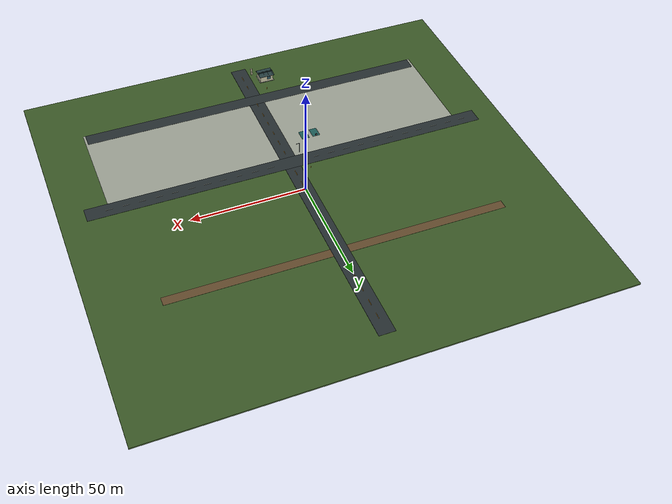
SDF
<sdf version="1.9">
 <world name="fleetscope_estate">
  <model name="estate_ground">
   <static>true</static>
   <link name="structure">
    <visual name="visual_0">
     <pose>0 0 -0.3 0 0 0</pose>
     <geometry><box><size>200 190 0.6</size></box></geometry>
     <material>
      <ambient>0.24 0.36 0.16 1</ambient>
      <diffuse>0.24 0.36 0.16 1</diffuse>
      <specular>.08 .08 .08 1</specular>
     </material>
    </visual>
    <collision name="collision_0">
     <pose>0 0 -0.3 0 0 0</pose>
     <geometry><box><size>200 190 0.6</size></box></geometry>
    </collision>
   </link>
  </model>
  <model name="campus_apron">
   <static>true</static>
   <link name="structure">
    <visual name="visual_0">
     <pose>0 -43 0.015 0 0 0</pose>
     <geometry><box><size>158 48 0.03</size></box></geometry>
     <material>
      <ambient>0.63 0.65 0.6 1</ambient>
      <diffuse>0.63 0.65 0.6 1</diffuse>
      <specular>.08 .08 .08 1</specular>
     </material>
     <cast_shadows>false</cast_shadows>
    </visual>
    <collision name="collision_0">
     <pose>0 -43 0.015 0 0 0</pose>
     <geometry><box><size>158 48 0.03</size></box></geometry>
    </collision>
   </link>
  </model>
  <model name="service_roads">
   <static>true</static>
   <link name="structure">
    <visual name="visual_0">
     <pose>0 -3 0.035 0 0 0</pose>
     <geometry><box><size>7 170 0.05</size></box></geometry>
     <material>
      <ambient>0.16 0.19 0.2 1</ambient>
      <diffuse>0.16 0.19 0.2 1</diffuse>
      <specular>.08 .08 .08 1</specular>
     </material>
     <cast_shadows>false</cast_shadows>
    </visual>
    <collision name="collision_0">
     <pose>0 -3 0.035 0 0 0</pose>
     <geometry><box><size>7 170 0.05</size></box></geometry>
    </collision>
    <visual name="visual_1">
     <pose>0 -18 0.036 0 0 0</pose>
     <geometry><box><size>178 7 0.05</size></box></geometry>
     <material>
      <ambient>0.16 0.19 0.2 1</ambient>
      <diffuse>0.16 0.19 0.2 1</diffuse>
      <specular>.08 .08 .08 1</specular>
     </material>
     <cast_shadows>false</cast_shadows>
    </visual>
    <collision name="collision_1">
     <pose>0 -18 0.036 0 0 0</pose>
     <geometry><box><size>178 7 0.05</size></box></geometry>
    </collision>
    <visual name="visual_2">
     <pose>0 -64 0.036 0 0 0</pose>
     <geometry><box><size>156 6 0.05</size></box></geometry>
     <material>
      <ambient>0.16 0.19 0.2 1</ambient>
      <diffuse>0.16 0.19 0.2 1</diffuse>
      <specular>.08 .08 .08 1</specular>
     </material>
     <cast_shadows>false</cast_shadows>
    </visual>
    <collision name="collision_2">
     <pose>0 -64 0.036 0 0 0</pose>
     <geometry><box><size>156 6 0.05</size></box></geometry>
    </collision>
    <visual name="visual_3">
     <pose>0 37.5 0.025 0 0 0</pose>
     <geometry><box><size>145 4 0.03</size></box></geometry>
     <material>
      <ambient>0.4 0.3 0.18 1</ambient>
      <diffuse>0.4 0.3 0.18 1</diffuse>
      <specular>.08 .08 .08 1</specular>
     </material>
     <cast_shadows>false</cast_shadows>
    </visual>
    <collision name="collision_3">
     <pose>0 37.5 0.025 0 0 0</pose>
     <geometry><box><size>145 4 0.03</size></box></geometry>
    </collision>
    <visual name="visual_4">
     <pose>0 -81 0.065 0 0 0</pose>
     <geometry><box><size>0.15 3 0.009</size></box></geometry>
     <material>
      <ambient>0.95 0.64 0.13 1</ambient>
      <diffuse>0.95 0.64 0.13 1</diffuse>
      <specular>.08 .08 .08 1</specular>
     </material>
     <cast_shadows>false</cast_shadows>
    </visual>
    <visual name="visual_5">
     <pose>0 -74 0.065 0 0 0</pose>
     <geometry><box><size>0.15 3 0.009</size></box></geometry>
     <material>
      <ambient>0.95 0.64 0.13 1</ambient>
      <diffuse>0.95 0.64 0.13 1</diffuse>
      <specular>.08 .08 .08 1</specular>
     </material>
     <cast_shadows>false</cast_shadows>
    </visual>
    <visual name="visual_6">
     <pose>0 -60 0.065 0 0 0</pose>
     <geometry><box><size>0.15 3 0.009</size></box></geometry>
     <material>
      <ambient>0.95 0.64 0.13 1</ambient>
      <diffuse>0.95 0.64 0.13 1</diffuse>
      <specular>.08 .08 .08 1</specular>
     </material>
     <cast_shadows>false</cast_shadows>
    </visual>
    <visual name="visual_7">
     <pose>0 -53 0.065 0 0 0</pose>
     <geometry><box><size>0.15 3 0.009</size></box></geometry>
     <material>
      <ambient>0.95 0.64 0.13 1</ambient>
      <diffuse>0.95 0.64 0.13 1</diffuse>
      <specular>.08 .08 .08 1</specular>
     </material>
     <cast_shadows>false</cast_shadows>
    </visual>
    <visual name="visual_8">
     <pose>0 -46 0.065 0 0 0</pose>
     <geometry><box><size>0.15 3 0.009</size></box></geometry>
     <material>
      <ambient>0.95 0.64 0.13 1</ambient>
      <diffuse>0.95 0.64 0.13 1</diffuse>
      <specular>.08 .08 .08 1</specular>
     </material>
     <cast_shadows>false</cast_shadows>
    </visual>
    <visual name="visual_9">
     <pose>0 -39 0.065 0 0 0</pose>
     <geometry><box><size>0.15 3 0.009</size></box></geometry>
     <material>
      <ambient>0.95 0.64 0.13 1</ambient>
      <diffuse>0.95 0.64 0.13 1</diffuse>
      <specular>.08 .08 .08 1</specular>
     </material>
     <cast_shadows>false</cast_shadows>
    </visual>
    <visual name="visual_10">
     <pose>0 -32 0.065 0 0 0</pose>
     <geometry><box><size>0.15 3 0.009</size></box></geometry>
     <material>
      <ambient>0.95 0.64 0.13 1</ambient>
      <diffuse>0.95 0.64 0.13 1</diffuse>
      <specular>.08 .08 .08 1</specular>
     </material>
     <cast_shadows>false</cast_shadows>
    </visual>
    <visual name="visual_11">
     <pose>0 -25 0.065 0 0 0</pose>
     <geometry><box><size>0.15 3 0.009</size></box></geometry>
     <material>
      <ambient>0.95 0.64 0.13 1</ambient>
      <diffuse>0.95 0.64 0.13 1</diffuse>
      <specular>.08 .08 .08 1</specular>
     </material>
     <cast_shadows>false</cast_shadows>
    </visual>
    <visual name="visual_12">
     <pose>0 -11 0.065 0 0 0</pose>
     <geometry><box><size>0.15 3 0.009</size></box></geometry>
     <material>
      <ambient>0.95 0.64 0.13 1</ambient>
      <diffuse>0.95 0.64 0.13 1</diffuse>
      <specular>.08 .08 .08 1</specular>
     </material>
     <cast_shadows>false</cast_shadows>
    </visual>
    <visual name="visual_13">
     <pose>0 -4 0.065 0 0 0</pose>
     <geometry><box><size>0.15 3 0.009</size></box></geometry>
     <material>
      <ambient>0.95 0.64 0.13 1</ambient>
      <diffuse>0.95 0.64 0.13 1</diffuse>
      <specular>.08 .08 .08 1</specular>
     </material>
     <cast_shadows>false</cast_shadows>
    </visual>
    <visual name="visual_14">
     <pose>0 3 0.065 0 0 0</pose>
     <geometry><box><size>0.15 3 0.009</size></box></geometry>
     <material>
      <ambient>0.95 0.64 0.13 1</ambient>
      <diffuse>0.95 0.64 0.13 1</diffuse>
      <specular>.08 .08 .08 1</specular>
     </material>
     <cast_shadows>false</cast_shadows>
    </visual>
    <visual name="visual_15">
     <pose>0 10 0.065 0 0 0</pose>
     <geometry><box><size>0.15 3 0.009</size></box></geometry>
     <material>
      <ambient>0.95 0.64 0.13 1</ambient>
      <diffuse>0.95 0.64 0.13 1</diffuse>
      <specular>.08 .08 .08 1</specular>
     </material>
     <cast_shadows>false</cast_shadows>
    </visual>
    <visual name="visual_16">
     <pose>0 17 0.065 0 0 0</pose>
     <geometry><box><size>0.15 3 0.009</size></box></geometry>
     <material>
      <ambient>0.95 0.64 0.13 1</ambient>
      <diffuse>0.95 0.64 0.13 1</diffuse>
      <specular>.08 .08 .08 1</specular>
     </material>
     <cast_shadows>false</cast_shadows>
    </visual>
    <visual name="visual_17">
     <pose>0 24 0.065 0 0 0</pose>
     <geometry><box><size>0.15 3 0.009</size></box></geometry>
     <material>
      <ambient>0.95 0.64 0.13 1</ambient>
      <diffuse>0.95 0.64 0.13 1</diffuse>
      <specular>.08 .08 .08 1</specular>
     </material>
     <cast_shadows>false</cast_shadows>
    </visual>
    <visual name="visual_18">
     <pose>0 31 0.065 0 0 0</pose>
     <geometry><box><size>0.15 3 0.009</size></box></geometry>
     <material>
      <ambient>0.95 0.64 0.13 1</ambient>
      <diffuse>0.95 0.64 0.13 1</diffuse>
      <specular>.08 .08 .08 1</specular>
     </material>
     <cast_shadows>false</cast_shadows>
    </visual>
    <visual name="visual_19">
     <pose>0 38 0.065 0 0 0</pose>
     <geometry><box><size>0.15 3 0.009</size></box></geometry>
     <material>
      <ambient>0.95 0.64 0.13 1</ambient>
      <diffuse>0.95 0.64 0.13 1</diffuse>
      <specular>.08 .08 .08 1</specular>
     </material>
     <cast_shadows>false</cast_shadows>
    </visual>
    <visual name="visual_20">
     <pose>0 45 0.065 0 0 0</pose>
     <geometry><box><size>0.15 3 0.009</size></box></geometry>
     <material>
      <ambient>0.95 0.64 0.13 1</ambient>
      <diffuse>0.95 0.64 0.13 1</diffuse>
      <specular>.08 .08 .08 1</specular>
     </material>
     <cast_shadows>false</cast_shadows>
    </visual>
    <visual name="visual_21">
     <pose>0 52 0.065 0 0 0</pose>
     <geometry><box><size>0.15 3 0.009</size></box></geometry>
     <material>
      <ambient>0.95 0.64 0.13 1</ambient>
      <diffuse>0.95 0.64 0.13 1</diffuse>
      <specular>.08 .08 .08 1</specular>
     </material>
     <cast_shadows>false</cast_shadows>
    </visual>
    <visual name="visual_22">
     <pose>0 59 0.065 0 0 0</pose>
     <geometry><box><size>0.15 3 0.009</size></box></geometry>
     <material>
      <ambient>0.95 0.64 0.13 1</ambient>
      <diffuse>0.95 0.64 0.13 1</diffuse>
      <specular>.08 .08 .08 1</specular>
     </material>
     <cast_shadows>false</cast_shadows>
    </visual>
    <visual name="visual_23">
     <pose>0 66 0.065 0 0 0</pose>
     <geometry><box><size>0.15 3 0.009</size></box></geometry>
     <material>
      <ambient>0.95 0.64 0.13 1</ambient>
      <diffuse>0.95 0.64 0.13 1</diffuse>
      <specular>.08 .08 .08 1</specular>
     </material>
     <cast_shadows>false</cast_shadows>
    </visual>
    <visual name="visual_24">
     <pose>0 73 0.065 0 0 0</pose>
     <geometry><box><size>0.15 3 0.009</size></box></geometry>
     <material>
      <ambient>0.95 0.64 0.13 1</ambient>
      <diffuse>0.95 0.64 0.13 1</diffuse>
      <specular>.08 .08 .08 1</specular>
     </material>
     <cast_shadows>false</cast_shadows>
    </visual>
    <visual name="visual_25">
     <pose>-82 -18 0.07 0 0 0</pose>
     <geometry><box><size>3 0.15 0.009</size></box></geometry>
     <material>
      <ambient>0.9 0.9 0.81 1</ambient>
      <diffuse>0.9 0.9 0.81 1</diffuse>
      <specular>.08 .08 .08 1</specular>
     </material>
     <cast_shadows>false</cast_shadows>
    </visual>
    <visual name="visual_26">
     <pose>-75 -18 0.07 0 0 0</pose>
     <geometry><box><size>3 0.15 0.009</size></box></geometry>
     <material>
      <ambient>0.9 0.9 0.81 1</ambient>
      <diffuse>0.9 0.9 0.81 1</diffuse>
      <specular>.08 .08 .08 1</specular>
     </material>
     <cast_shadows>false</cast_shadows>
    </visual>
    <visual name="visual_27">
     <pose>-68 -18 0.07 0 0 0</pose>
     <geometry><box><size>3 0.15 0.009</size></box></geometry>
     <material>
      <ambient>0.9 0.9 0.81 1</ambient>
      <diffuse>0.9 0.9 0.81 1</diffuse>
      <specular>.08 .08 .08 1</specular>
     </material>
     <cast_shadows>false</cast_shadows>
    </visual>
    <visual name="visual_28">
     <pose>-61 -18 0.07 0 0 0</pose>
     <geometry><box><size>3 0.15 0.009</size></box></geometry>
     <material>
      <ambient>0.9 0.9 0.81 1</ambient>
      <diffuse>0.9 0.9 0.81 1</diffuse>
      <specular>.08 .08 .08 1</specular>
     </material>
     <cast_shadows>false</cast_shadows>
    </visual>
    <visual name="visual_29">
     <pose>-54 -18 0.07 0 0 0</pose>
     <geometry><box><size>3 0.15 0.009</size></box></geometry>
     <material>
      <ambient>0.9 0.9 0.81 1</ambient>
      <diffuse>0.9 0.9 0.81 1</diffuse>
      <specular>.08 .08 .08 1</specular>
     </material>
     <cast_shadows>false</cast_shadows>
    </visual>
    <visual name="visual_30">
     <pose>-47 -18 0.07 0 0 0</pose>
     <geometry><box><size>3 0.15 0.009</size></box></geometry>
     <material>
      <ambient>0.9 0.9 0.81 1</ambient>
      <diffuse>0.9 0.9 0.81 1</diffuse>
      <specular>.08 .08 .08 1</specular>
     </material>
     <cast_shadows>false</cast_shadows>
    </visual>
    <visual name="visual_31">
     <pose>-40 -18 0.07 0 0 0</pose>
     <geometry><box><size>3 0.15 0.009</size></box></geometry>
     <material>
      <ambient>0.9 0.9 0.81 1</ambient>
      <diffuse>0.9 0.9 0.81 1</diffuse>
      <specular>.08 .08 .08 1</specular>
     </material>
     <cast_shadows>false</cast_shadows>
    </visual>
    <visual name="visual_32">
     <pose>-33 -18 0.07 0 0 0</pose>
     <geometry><box><size>3 0.15 0.009</size></box></geometry>
     <material>
      <ambient>0.9 0.9 0.81 1</ambient>
      <diffuse>0.9 0.9 0.81 1</diffuse>
      <specular>.08 .08 .08 1</specular>
     </material>
     <cast_shadows>false</cast_shadows>
    </visual>
    <visual name="visual_33">
     <pose>-26 -18 0.07 0 0 0</pose>
     <geometry><box><size>3 0.15 0.009</size></box></geometry>
     <material>
      <ambient>0.9 0.9 0.81 1</ambient>
      <diffuse>0.9 0.9 0.81 1</diffuse>
      <specular>.08 .08 .08 1</specular>
     </material>
     <cast_shadows>false</cast_shadows>
    </visual>
    <visual name="visual_34">
     <pose>-19 -18 0.07 0 0 0</pose>
     <geometry><box><size>3 0.15 0.009</size></box></geometry>
     <material>
      <ambient>0.9 0.9 0.81 1</ambient>
      <diffuse>0.9 0.9 0.81 1</diffuse>
      <specular>.08 .08 .08 1</specular>
     </material>
     <cast_shadows>false</cast_shadows>
    </visual>
    <visual name="visual_35">
     <pose>-12 -18 0.07 0 0 0</pose>
     <geometry><box><size>3 0.15 0.009</size></box></geometry>
     <material>
      <ambient>0.9 0.9 0.81 1</ambient>
      <diffuse>0.9 0.9 0.81 1</diffuse>
      <specular>.08 .08 .08 1</specular>
     </material>
     <cast_shadows>false</cast_shadows>
    </visual>
    <visual name="visual_36">
     <pose>9 -18 0.07 0 0 0</pose>
     <geometry><box><size>3 0.15 0.009</size></box></geometry>
     <material>
      <ambient>0.9 0.9 0.81 1</ambient>
      <diffuse>0.9 0.9 0.81 1</diffuse>
      <specular>.08 .08 .08 1</specular>
     </material>
     <cast_shadows>false</cast_shadows>
    </visual>
    <visual name="visual_37">
     <pose>16 -18 0.07 0 0 0</pose>
     <geometry><box><size>3 0.15 0.009</size></box></geometry>
     <material>
      <ambient>0.9 0.9 0.81 1</ambient>
      <diffuse>0.9 0.9 0.81 1</diffuse>
      <specular>.08 .08 .08 1</specular>
     </material>
     <cast_shadows>false</cast_shadows>
    </visual>
    <visual name="visual_38">
     <pose>23 -18 0.07 0 0 0</pose>
     <geometry><box><size>3 0.15 0.009</size></box></geometry>
     <material>
      <ambient>0.9 0.9 0.81 1</ambient>
      <diffuse>0.9 0.9 0.81 1</diffuse>
      <specular>.08 .08 .08 1</specular>
     </material>
     <cast_shadows>false</cast_shadows>
    </visual>
    <visual name="visual_39">
     <pose>30 -18 0.07 0 0 0</pose>
     <geometry><box><size>3 0.15 0.009</size></box></geometry>
     <material>
      <ambient>0.9 0.9 0.81 1</ambient>
      <diffuse>0.9 0.9 0.81 1</diffuse>
      <specular>.08 .08 .08 1</specular>
     </material>
     <cast_shadows>false</cast_shadows>
    </visual>
    <visual name="visual_40">
     <pose>37 -18 0.07 0 0 0</pose>
     <geometry><box><size>3 0.15 0.009</size></box></geometry>
     <material>
      <ambient>0.9 0.9 0.81 1</ambient>
      <diffuse>0.9 0.9 0.81 1</diffuse>
      <specular>.08 .08 .08 1</specular>
     </material>
     <cast_shadows>false</cast_shadows>
    </visual>
    <visual name="visual_41">
     <pose>44 -18 0.07 0 0 0</pose>
     <geometry><box><size>3 0.15 0.009</size></box></geometry>
     <material>
      <ambient>0.9 0.9 0.81 1</ambient>
      <diffuse>0.9 0.9 0.81 1</diffuse>
      <specular>.08 .08 .08 1</specular>
     </material>
     <cast_shadows>false</cast_shadows>
    </visual>
    <visual name="visual_42">
     <pose>51 -18 0.07 0 0 0</pose>
     <geometry><box><size>3 0.15 0.009</size></box></geometry>
     <material>
      <ambient>0.9 0.9 0.81 1</ambient>
      <diffuse>0.9 0.9 0.81 1</diffuse>
      <specular>.08 .08 .08 1</specular>
     </material>
     <cast_shadows>false</cast_shadows>
    </visual>
    <visual name="visual_43">
     <pose>58 -18 0.07 0 0 0</pose>
     <geometry><box><size>3 0.15 0.009</size></box></geometry>
     <material>
      <ambient>0.9 0.9 0.81 1</ambient>
      <diffuse>0.9 0.9 0.81 1</diffuse>
      <specular>.08 .08 .08 1</specular>
     </material>
     <cast_shadows>false</cast_shadows>
    </visual>
    <visual name="visual_44">
     <pose>65 -18 0.07 0 0 0</pose>
     <geometry><box><size>3 0.15 0.009</size></box></geometry>
     <material>
      <ambient>0.9 0.9 0.81 1</ambient>
      <diffuse>0.9 0.9 0.81 1</diffuse>
      <specular>.08 .08 .08 1</specular>
     </material>
     <cast_shadows>false</cast_shadows>
    </visual>
    <visual name="visual_45">
     <pose>72 -18 0.07 0 0 0</pose>
     <geometry><box><size>3 0.15 0.009</size></box></geometry>
     <material>
      <ambient>0.9 0.9 0.81 1</ambient>
      <diffuse>0.9 0.9 0.81 1</diffuse>
      <specular>.08 .08 .08 1</specular>
     </material>
     <cast_shadows>false</cast_shadows>
    </visual>
    <visual name="visual_46">
     <pose>79 -18 0.07 0 0 0</pose>
     <geometry><box><size>3 0.15 0.009</size></box></geometry>
     <material>
      <ambient>0.9 0.9 0.81 1</ambient>
      <diffuse>0.9 0.9 0.81 1</diffuse>
      <specular>.08 .08 .08 1</specular>
     </material>
     <cast_shadows>false</cast_shadows>
    </visual>
   </link>
  </model>
  <model name="gatehouse">
   <static>true</static>
   <pose>-10 -78 0 0 0 0</pose>
   <link name="structure">
    <visual name="visual_0">
     <pose>0 0 0.05 0 0 0</pose>
     <geometry><box><size>6.8 5.8 0.1</size></box></geometry>
     <material>
      <ambient>0.63 0.65 0.6 1</ambient>
      <diffuse>0.63 0.65 0.6 1</diffuse>
      <specular>.08 .08 .08 1</specular>
     </material>
     <cast_shadows>false</cast_shadows>
    </visual>
    <collision name="collision_0">
     <pose>0 0 0.05 0 0 0</pose>
     <geometry><box><size>6.8 5.8 0.1</size></box></geometry>
    </collision>
    <visual name="visual_1">
     <pose>0 0 1.5 0 0 0</pose>
     <geometry><box><size>6 5 3</size></box></geometry>
     <material>
      <ambient>0.8 0.78 0.66 1</ambient>
      <diffuse>0.8 0.78 0.66 1</diffuse>
      <specular>.08 .08 .08 1</specular>
     </material>
    </visual>
    <collision name="collision_1">
     <pose>0 0 1.5 0 0 0</pose>
     <geometry><box><size>6 5 3</size></box></geometry>
    </collision>
    <visual name="visual_2">
     <pose>-1 -2.535 1.74 0 0 0</pose>
     <geometry><box><size>1.7 0.08 1.4</size></box></geometry>
     <material>
      <ambient>0.19 0.35 0.4 1</ambient>
      <diffuse>0.19 0.35 0.4 1</diffuse>
      <specular>.08 .08 .08 1</specular>
     </material>
    </visual>
    <visual name="visual_3">
     <pose>-1 2.535 1.74 0 0 0</pose>
     <geometry><box><size>1.7 0.08 1.4</size></box></geometry>
     <material>
      <ambient>0.19 0.35 0.4 1</ambient>
      <diffuse>0.19 0.35 0.4 1</diffuse>
      <specular>.08 .08 .08 1</specular>
     </material>
    </visual>
    <visual name="visual_4">
     <pose>0 -2.565 1.3 0 0 0</pose>
     <geometry><box><size>1.6 0.1 2.6</size></box></geometry>
     <material>
      <ambient>0.12 0.38 0.36 1</ambient>
      <diffuse>0.12 0.38 0.36 1</diffuse>
      <specular>.08 .08 .08 1</specular>
     </material>
    </visual>
    <collision name="collision_4">
     <pose>0 -2.565 1.3 0 0 0</pose>
     <geometry><box><size>1.6 0.1 2.6</size></box></geometry>
    </collision>
    <visual name="visual_5">
     <pose>0 -1.25 3.28 0.18 0 0</pose>
     <geometry><box><size>7 3.3 0.16</size></box></geometry>
     <material>
      <ambient>0.16 0.26 0.27 1</ambient>
      <diffuse>0.16 0.26 0.27 1</diffuse>
      <specular>.08 .08 .08 1</specular>
     </material>
    </visual>
    <collision name="collision_5">
     <pose>0 -1.25 3.28 0.18 0 0</pose>
     <geometry><box><size>7 3.3 0.16</size></box></geometry>
    </collision>
    <visual name="visual_6">
     <pose>0 1.25 3.28 -0.18 0 0</pose>
     <geometry><box><size>7 3.3 0.16</size></box></geometry>
     <material>
      <ambient>0.16 0.26 0.27 1</ambient>
      <diffuse>0.16 0.26 0.27 1</diffuse>
      <specular>.08 .08 .08 1</specular>
     </material>
    </visual>
    <collision name="collision_6">
     <pose>0 1.25 3.28 -0.18 0 0</pose>
     <geometry><box><size>7 3.3 0.16</size></box></geometry>
    </collision>
    <visual name="visual_7">
     <pose>-3 -1.25 3.38 0.18 0 0</pose>
     <geometry><box><size>0.045 3.3 0.05</size></box></geometry>
     <material>
      <ambient>0.25 0.29 0.3 1</ambient>
      <diffuse>0.25 0.29 0.3 1</diffuse>
      <specular>.08 .08 .08 1</specular>
     </material>
     <cast_shadows>false</cast_shadows>
    </visual>
    <visual name="visual_8">
     <pose>-3 1.25 3.38 -0.18 0 0</pose>
     <geometry><box><size>0.045 3.3 0.05</size></box></geometry>
     <material>
      <ambient>0.25 0.29 0.3 1</ambient>
      <diffuse>0.25 0.29 0.3 1</diffuse>
      <specular>.08 .08 .08 1</specular>
     </material>
     <cast_shadows>false</cast_shadows>
    </visual>
    <visual name="visual_9">
     <pose>-1 -1.25 3.38 0.18 0 0</pose>
     <geometry><box><size>0.045 3.3 0.05</size></box></geometry>
     <material>
      <ambient>0.25 0.29 0.3 1</ambient>
      <diffuse>0.25 0.29 0.3 1</diffuse>
      <specular>.08 .08 .08 1</specular>
     </material>
     <cast_shadows>false</cast_shadows>
    </visual>
    <visual name="visual_10">
     <pose>-1 1.25 3.38 -0.18 0 0</pose>
     <geometry><box><size>0.045 3.3 0.05</size></box></geometry>
     <material>
      <ambient>0.25 0.29 0.3 1</ambient>
      <diffuse>0.25 0.29 0.3 1</diffuse>
      <specular>.08 .08 .08 1</specular>
     </material>
     <cast_shadows>false</cast_shadows>
    </visual>
    <visual name="visual_11">
     <pose>1 -1.25 3.38 0.18 0 0</pose>
     <geometry><box><size>0.045 3.3 0.05</size></box></geometry>
     <material>
      <ambient>0.25 0.29 0.3 1</ambient>
      <diffuse>0.25 0.29 0.3 1</diffuse>
      <specular>.08 .08 .08 1</specular>
     </material>
     <cast_shadows>false</cast_shadows>
    </visual>
    <visual name="visual_12">
     <pose>1 1.25 3.38 -0.18 0 0</pose>
     <geometry><box><size>0.045 3.3 0.05</size></box></geometry>
     <material>
      <ambient>0.25 0.29 0.3 1</ambient>
      <diffuse>0.25 0.29 0.3 1</diffuse>
      <specular>.08 .08 .08 1</specular>
     </material>
     <cast_shadows>false</cast_shadows>
    </visual>
    <visual name="visual_13">
     <pose>3 -1.25 3.38 0.18 0 0</pose>
     <geometry><box><size>0.045 3.3 0.05</size></box></geometry>
     <material>
      <ambient>0.25 0.29 0.3 1</ambient>
      <diffuse>0.25 0.29 0.3 1</diffuse>
      <specular>.08 .08 .08 1</specular>
     </material>
     <cast_shadows>false</cast_shadows>
    </visual>
    <visual name="visual_14">
     <pose>3 1.25 3.38 -0.18 0 0</pose>
     <geometry><box><size>0.045 3.3 0.05</size></box></geometry>
     <material>
      <ambient>0.25 0.29 0.3 1</ambient>
      <diffuse>0.25 0.29 0.3 1</diffuse>
      <specular>.08 .08 .08 1</specular>
     </material>
     <cast_shadows>false</cast_shadows>
    </visual>
    <visual name="visual_15">
     <pose>0 -2.64 2.45 0 0 0</pose>
     <geometry><box><size>6 0.16 0.65</size></box></geometry>
     <material>
      <ambient>0.12 0.38 0.36 1</ambient>
      <diffuse>0.12 0.38 0.36 1</diffuse>
      <specular>.08 .08 .08 1</specular>
     </material>
    </visual>
   </link>
  </model>
  <model name="go2_parking_bay">
   <static>true</static>
   <pose>-17 -33 0 0 0 0</pose>
   <link name="structure">
    <visual name="visual_0">
     <pose>0 0 0.021 0 0 0</pose>
     <geometry><box><size>3.4 5 0.025</size></box></geometry>
     <material>
      <ambient>0.12 0.38 0.36 1</ambient>
      <diffuse>0.12 0.38 0.36 1</diffuse>
      <specular>.08 .08 .08 1</specular>
     </material>
     <cast_shadows>false</cast_shadows>
    </visual>
    <collision name="collision_0">
     <pose>0 0 0.021 0 0 0</pose>
     <geometry><box><size>3.4 5 0.025</size></box></geometry>
    </collision>
    <visual name="visual_1">
     <pose>-1.6 0 0.044 0 0 0</pose>
     <geometry><box><size>0.08 4.8 0.012</size></box></geometry>
     <material>
      <ambient>0.9 0.9 0.81 1</ambient>
      <diffuse>0.9 0.9 0.81 1</diffuse>
      <specular>.08 .08 .08 1</specular>
     </material>
     <cast_shadows>false</cast_shadows>
    </visual>
    <visual name="visual_2">
     <pose>1.6 0 0.044 0 0 0</pose>
     <geometry><box><size>0.08 4.8 0.012</size></box></geometry>
     <material>
      <ambient>0.9 0.9 0.81 1</ambient>
      <diffuse>0.9 0.9 0.81 1</diffuse>
      <specular>.08 .08 .08 1</specular>
     </material>
     <cast_shadows>false</cast_shadows>
    </visual>
    <visual name="visual_3">
     <pose>0 2.15 0.48 0 0 0</pose>
     <geometry><box><size>0.6 0.35 0.95</size></box></geometry>
     <material>
      <ambient>0.25 0.29 0.3 1</ambient>
      <diffuse>0.25 0.29 0.3 1</diffuse>
      <specular>.08 .08 .08 1</specular>
     </material>
    </visual>
    <collision name="collision_3">
     <pose>0 2.15 0.48 0 0 0</pose>
     <geometry><box><size>0.6 0.35 0.95</size></box></geometry>
    </collision>
    <visual name="visual_4">
     <pose>0 1.96 0.62 0 0 0</pose>
     <geometry><box><size>0.38 0.04 0.35</size></box></geometry>
     <material>
      <ambient>0.19 0.35 0.4 1</ambient>
      <diffuse>0.19 0.35 0.4 1</diffuse>
      <specular>.08 .08 .08 1</specular>
     </material>
    </visual>
   </link>
  </model>
  <model name="husky_parking_bay">
   <static>true</static>
   <pose>-12 -33 0 0 0 0</pose>
   <link name="structure">
    <visual name="visual_0">
     <pose>0 0 0.021 0 0 0</pose>
     <geometry><box><size>3.4 5 0.025</size></box></geometry>
     <material>
      <ambient>0.12 0.38 0.36 1</ambient>
      <diffuse>0.12 0.38 0.36 1</diffuse>
      <specular>.08 .08 .08 1</specular>
     </material>
     <cast_shadows>false</cast_shadows>
    </visual>
    <collision name="collision_0">
     <pose>0 0 0.021 0 0 0</pose>
     <geometry><box><size>3.4 5 0.025</size></box></geometry>
    </collision>
    <visual name="visual_1">
     <pose>-1.6 0 0.044 0 0 0</pose>
     <geometry><box><size>0.08 4.8 0.012</size></box></geometry>
     <material>
      <ambient>0.9 0.9 0.81 1</ambient>
      <diffuse>0.9 0.9 0.81 1</diffuse>
      <specular>.08 .08 .08 1</specular>
     </material>
     <cast_shadows>false</cast_shadows>
    </visual>
    <visual name="visual_2">
     <pose>1.6 0 0.044 0 0 0</pose>
     <geometry><box><size>0.08 4.8 0.012</size></box></geometry>
     <material>
      <ambient>0.9 0.9 0.81 1</ambient>
      <diffuse>0.9 0.9 0.81 1</diffuse>
      <specular>.08 .08 .08 1</specular>
     </material>
     <cast_shadows>false</cast_shadows>
    </visual>
    <visual name="visual_3">
     <pose>0 2.15 0.48 0 0 0</pose>
     <geometry><box><size>0.6 0.35 0.95</size></box></geometry>
     <material>
      <ambient>0.25 0.29 0.3 1</ambient>
      <diffuse>0.25 0.29 0.3 1</diffuse>
      <specular>.08 .08 .08 1</specular>
     </material>
    </visual>
    <collision name="collision_3">
     <pose>0 2.15 0.48 0 0 0</pose>
     <geometry><box><size>0.6 0.35 0.95</size></box></geometry>
    </collision>
    <visual name="visual_4">
     <pose>0 1.96 0.62 0 0 0</pose>
     <geometry><box><size>0.38 0.04 0.35</size></box></geometry>
     <material>
      <ambient>0.19 0.35 0.4 1</ambient>
      <diffuse>0.19 0.35 0.4 1</diffuse>
      <specular>.08 .08 .08 1</specular>
     </material>
    </visual>
   </link>
  </model>
  <model name="entrance_pillar_-5">
   <static>true</static>
   <pose>-5 -83 0 0 0 0</pose>
   <link name="structure">
    <visual name="visual_0">
     <pose>0 0 1.6 0 0 0</pose>
     <geometry><box><size>0.7 0.7 3.2</size></box></geometry>
     <material>
      <ambient>0.8 0.78 0.66 1</ambient>
      <diffuse>0.8 0.78 0.66 1</diffuse>
      <specular>.08 .08 .08 1</specular>
     </material>
    </visual>
    <collision name="collision_0">
     <pose>0 0 1.6 0 0 0</pose>
     <geometry><box><size>0.7 0.7 3.2</size></box></geometry>
    </collision>
   </link>
  </model>
  <model name="road_light_-6">
   <static>true</static>
   <pose>-6 -23 0 0 0 0</pose>
   <link name="structure">
    <visual name="visual_0">
     <pose>0 0 2.6 0 0 0</pose>
     <geometry><cylinder><radius>0.09</radius><length>5.2</length></cylinder></geometry>
     <material>
      <ambient>0.25 0.29 0.3 1</ambient>
      <diffuse>0.25 0.29 0.3 1</diffuse>
      <specular>.08 .08 .08 1</specular>
     </material>
    </visual>
    <collision name="collision_0">
     <pose>0 0 2.6 0 0 0</pose>
     <geometry><cylinder><radius>0.09</radius><length>5.2</length></cylinder></geometry>
    </collision>
    <visual name="visual_1">
     <pose>0.6 0 5.1 0 0 0</pose>
     <geometry><box><size>1.3 0.15 0.12</size></box></geometry>
     <material>
      <ambient>0.25 0.29 0.3 1</ambient>
      <diffuse>0.25 0.29 0.3 1</diffuse>
      <specular>.08 .08 .08 1</specular>
     </material>
    </visual>
    <collision name="collision_1">
     <pose>0.6 0 5.1 0 0 0</pose>
     <geometry><box><size>1.3 0.15 0.12</size></box></geometry>
    </collision>
    <visual name="visual_2">
     <pose>1.1 0 5.03 0 0 0</pose>
     <geometry><box><size>0.5 0.35 0.08</size></box></geometry>
     <material>
      <ambient>0.9 0.9 0.81 1</ambient>
      <diffuse>0.9 0.9 0.81 1</diffuse>
      <specular>.08 .08 .08 1</specular>
     </material>
     <cast_shadows>false</cast_shadows>
    </visual>
   </link>
  </model>
  <model name="bollard_-8_-70">
   <static>true</static>
   <pose>-8 -70 0 0 0 0</pose>
   <link name="structure">
    <visual name="visual_0">
     <pose>0 0 0.4 0 0 0</pose>
     <geometry><cylinder><radius>0.14</radius><length>0.8</length></cylinder></geometry>
     <material>
      <ambient>0.95 0.64 0.13 1</ambient>
      <diffuse>0.95 0.64 0.13 1</diffuse>
      <specular>.08 .08 .08 1</specular>
     </material>
    </visual>
    <collision name="collision_0">
     <pose>0 0 0.4 0 0 0</pose>
     <geometry><cylinder><radius>0.14</radius><length>0.8</length></cylinder></geometry>
    </collision>
   </link>
  </model>
  <model name="bollard_-7_-12">
   <static>true</static>
   <pose>-7 -12 0 0 0 0</pose>
   <link name="structure">
    <visual name="visual_0">
     <pose>0 0 0.4 0 0 0</pose>
     <geometry><cylinder><radius>0.14</radius><length>0.8</length></cylinder></geometry>
     <material>
      <ambient>0.95 0.64 0.13 1</ambient>
      <diffuse>0.95 0.64 0.13 1</diffuse>
      <specular>.08 .08 .08 1</specular>
     </material>
    </visual>
    <collision name="collision_0">
     <pose>0 0 0.4 0 0 0</pose>
     <geometry><cylinder><radius>0.14</radius><length>0.8</length></cylinder></geometry>
    </collision>
   </link>
  </model>
 </world>
</sdf>
